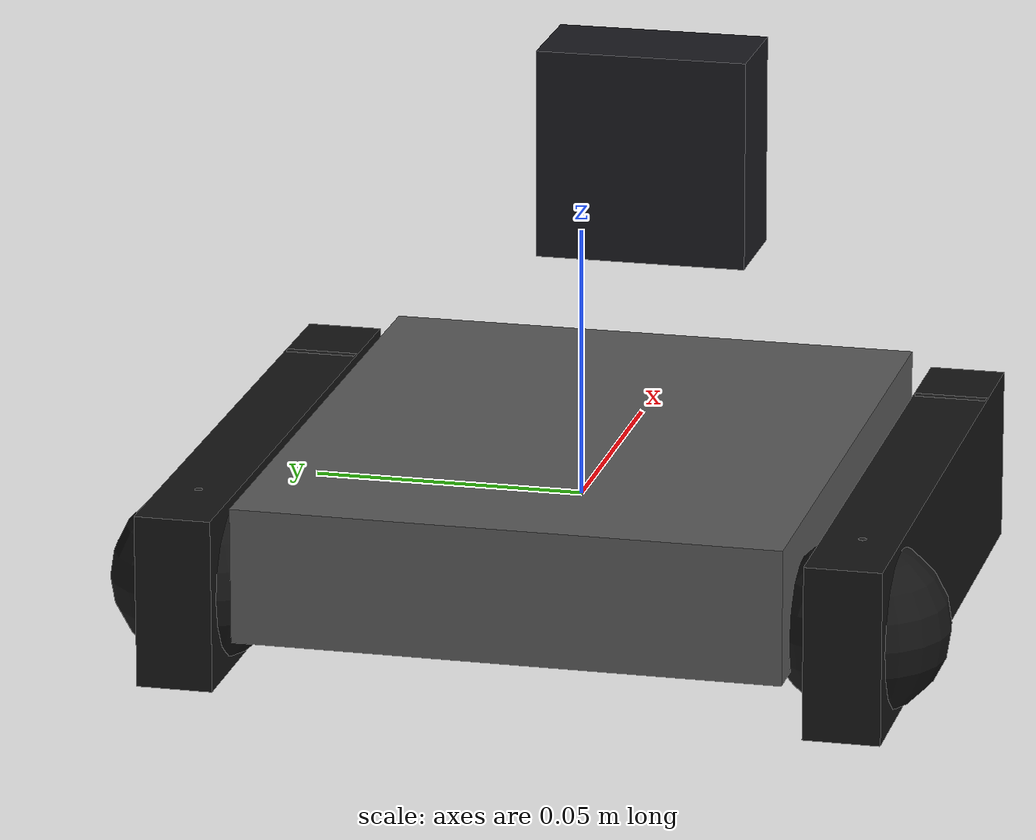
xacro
<?xml version="1.0"?>
<robot xmlns:xacro="http://www.ros.org/wiki/xacro" name="payload_pwm">

  <!-- Chassis and drivetrain dimensions (metres). -->
  <xacro:property name="body_length" value="0.12033"/>
  <xacro:property name="body_width" value="0.10000"/>
  <xacro:property name="body_height" value="0.02500"/>
  <xacro:property name="body_mass" value="0.50"/>

  <xacro:property name="wheel_radius" value="0.01611839"/>
  <xacro:property name="wheel_width" value="0.01338964"/>
  <xacro:property name="wheel_mass" value="0.05"/>
  <xacro:property name="wheel_separation" value="0.12132"/>
  <xacro:property name="wheel_base" value="0.08500"/>
  <xacro:property name="wheel_z" value="-0.00625"/>

  <!-- Decorative tread geometry. Wheel collisions provide the physics. -->
  <xacro:property name="tread_length" value="0.12000"/>
  <xacro:property name="tread_width" value="0.01400"/>
  <xacro:property name="tread_height" value="0.03200"/>

  <!-- Camera dimensions and mounting pose (metres / radians). -->
  <xacro:property name="camera_length" value="0.020"/>
  <xacro:property name="camera_width" value="0.040"/>
  <xacro:property name="camera_height" value="0.040"/>
  <xacro:property name="camera_mass" value="0.050"/>
  <xacro:property name="camera_x" value="0.058"/>
  <xacro:property name="camera_y" value="0.000"/>
  <xacro:property name="camera_z" value="0.050"/>

  <!-- Simulation parameters. -->
  <xacro:property name="wheel_mu" value="1.0"/>
  <xacro:property name="wheel_mu2" value="1.0"/>
  <xacro:property name="caster_mu" value="0.05"/>
  <xacro:property name="caster_mu2" value="0.05"/>
  <xacro:property name="joint_state_update_rate" value="20"/>
  <xacro:property name="camera_horizontal_fov" value="1.74"/>
  <xacro:property name="camera_width_px" value="1280"/>
  <xacro:property name="camera_height_px" value="960"/>
  <xacro:property name="camera_update_rate" value="30"/>

  <material name="payload_body_color">
    <color rgba="0.35 0.35 0.35 1.0"/>
  </material>

  <material name="payload_tread_color">
    <color rgba="0.08 0.08 0.08 1.0"/>
  </material>

  <material name="payload_camera_color">
    <color rgba="0.10 0.10 0.12 1.0"/>
  </material>

  <xacro:macro name="box_inertial" params="mass x y z">
    <inertial>
      <origin xyz="0 0 0" rpy="0 0 0"/>
      <mass value="${mass}"/>
      <inertia
        ixx="${mass * (y * y + z * z) / 12.0}"
        ixy="0.0"
        ixz="0.0"
        iyy="${mass * (x * x + z * z) / 12.0}"
        iyz="0.0"
        izz="${mass * (x * x + y * y) / 12.0}"/>
    </inertial>
  </xacro:macro>

  <!--
    Passive rear supports. URDF has no ball joint, so use spherical contacts
    with low friction to behave like small caster balls in Gazebo.
  -->
  <xacro:macro name="caster_ball" params="name x y">
    <link name="${name}">
      <visual>
        <origin xyz="0 0 0" rpy="0 0 0"/>
        <geometry>
          <sphere radius="${wheel_radius}"/>
        </geometry>
        <material name="payload_tread_color"/>
      </visual>

      <collision>
        <origin xyz="0 0 0" rpy="0 0 0"/>
        <geometry>
          <sphere radius="${wheel_radius}"/>
        </geometry>
      </collision>

      <inertial>
        <origin xyz="0 0 0" rpy="0 0 0"/>
        <mass value="${wheel_mass}"/>
        <inertia
          ixx="${2.0 * wheel_mass * wheel_radius * wheel_radius / 5.0}"
          ixy="0.0"
          ixz="0.0"
          iyy="${2.0 * wheel_mass * wheel_radius * wheel_radius / 5.0}"
          iyz="0.0"
          izz="${2.0 * wheel_mass * wheel_radius * wheel_radius / 5.0}"/>
      </inertial>
    </link>

    <joint name="${name}_joint" type="continuous">
      <origin xyz="${x} ${y} ${wheel_z}" rpy="0 0 0"/>
      <parent link="base_link"/>
      <child link="${name}"/>
      <axis xyz="0 1 0"/>
      <dynamics damping="0.0" friction="0.0"/>
    </joint>

    <gazebo reference="${name}">
      <mu1>${caster_mu}</mu1>
      <mu2>${caster_mu2}</mu2>
    </gazebo>
  </xacro:macro>

  <!--
    A wheel cylinder is drawn with its axis along y. The joint frame remains
    aligned with base_link, making its rotation axis unambiguously +y.
  -->
  <xacro:macro name="drive_wheel" params="name x y">
    <link name="${name}">
      <visual>
        <origin xyz="0 0 0" rpy="1.57079632679 0 0"/>
        <geometry>
          <cylinder radius="${wheel_radius}" length="${wheel_width}"/>
        </geometry>
        <material name="payload_tread_color"/>
      </visual>

      <collision>
        <origin xyz="0 0 0" rpy="1.57079632679 0 0"/>
        <geometry>
          <cylinder radius="${wheel_radius}" length="${wheel_width}"/>
        </geometry>
      </collision>

      <inertial>
        <origin xyz="0 0 0" rpy="0 0 0"/>
        <mass value="${wheel_mass}"/>
        <!-- Solid-cylinder inertia with the cylinder axis along y. -->
        <inertia
          ixx="${wheel_mass * (3.0 * wheel_radius * wheel_radius + wheel_width * wheel_width) / 12.0}"
          ixy="0.0"
          ixz="0.0"
          iyy="${wheel_mass * wheel_radius * wheel_radius / 2.0}"
          iyz="0.0"
          izz="${wheel_mass * (3.0 * wheel_radius * wheel_radius + wheel_width * wheel_width) / 12.0}"/>
      </inertial>
    </link>

    <joint name="${name}_joint" type="continuous">
      <origin xyz="${x} ${y} ${wheel_z}" rpy="0 0 0"/>
      <parent link="base_link"/>
      <child link="${name}"/>
      <axis xyz="0 1 0"/>
      <dynamics damping="0.01" friction="0.0"/>
    </joint>

    <gazebo reference="${name}">
      <mu1>${wheel_mu}</mu1>
      <mu2>${wheel_mu2}</mu2>
    </gazebo>
  </xacro:macro>

  <link name="base_link">
    <visual name="body_visual">
      <origin xyz="0 0 0" rpy="0 0 0"/>
      <geometry>
        <box size="${body_length} ${body_width} ${body_height}"/>
      </geometry>
      <material name="payload_body_color"/>
    </visual>

    <!-- Treads are visual approximations; the wheels handle contact. -->
    <visual name="left_tread_visual">
      <origin xyz="0 ${wheel_separation / 2.0} ${wheel_z}" rpy="0 0 0"/>
      <geometry>
        <box size="${tread_length} ${tread_width} ${tread_height}"/>
      </geometry>
      <material name="payload_tread_color"/>
    </visual>

    <visual name="right_tread_visual">
      <origin xyz="0 ${-wheel_separation / 2.0} ${wheel_z}" rpy="0 0 0"/>
      <geometry>
        <box size="${tread_length} ${tread_width} ${tread_height}"/>
      </geometry>
      <material name="payload_tread_color"/>
    </visual>

    <collision name="body_collision">
      <origin xyz="0 0 0" rpy="0 0 0"/>
      <geometry>
        <box size="${body_length} ${body_width} ${body_height}"/>
      </geometry>
    </collision>

    <xacro:box_inertial
      mass="${body_mass}"
      x="${body_length}"
      y="${body_width}"
      z="${body_height}"/>
  </link>

  <xacro:drive_wheel
    name="front_left_wheel"
    x="${wheel_base / 2.0}"
    y="${wheel_separation / 2.0}"/>
  <xacro:caster_ball
    name="rear_left_wheel"
    x="${-wheel_base / 2.0}"
    y="${wheel_separation / 2.0}"/>
  <xacro:drive_wheel
    name="front_right_wheel"
    x="${wheel_base / 2.0}"
    y="${-wheel_separation / 2.0}"/>
  <xacro:caster_ball
    name="rear_right_wheel"
    x="${-wheel_base / 2.0}"
    y="${-wheel_separation / 2.0}"/>

  <link name="camera_link">
    <visual>
      <origin xyz="0 0 0" rpy="0 0 0"/>
      <geometry>
        <box size="${camera_length} ${camera_width} ${camera_height}"/>
      </geometry>
      <material name="payload_camera_color"/>
    </visual>

    <collision>
      <origin xyz="0 0 0" rpy="0 0 0"/>
      <geometry>
        <box size="${camera_length} ${camera_width} ${camera_height}"/>
      </geometry>
    </collision>

    <xacro:box_inertial
      mass="${camera_mass}"
      x="${camera_length}"
      y="${camera_width}"
      z="${camera_height}"/>
  </link>

  <joint name="camera_joint" type="fixed">
    <origin xyz="${camera_x} ${camera_y} ${camera_z}" rpy="0 0 0"/>
    <parent link="base_link"/>
    <child link="camera_link"/>
  </joint>

  <!-- Standard ROS optical-frame convention: z forward, x right, y down. -->
  <link name="camera_optical_frame"/>
  <joint name="camera_optical_joint" type="fixed">
    <origin xyz="0 0 0" rpy="-1.57079632679 0 -1.57079632679"/>
    <parent link="camera_link"/>
    <child link="camera_optical_frame"/>
  </joint>

  <!-- Keep camera_link as an SDF link so its scoped Gazebo topic is stable. -->
  <gazebo reference="camera_joint">
    <preserveFixedJoint>true</preserveFixedJoint>
  </gazebo>

  <gazebo reference="camera_link">
    <sensor name="camera" type="camera">
      <pose>0 0 0 0 0 0</pose>
      <gz_frame_id>camera_optical_frame</gz_frame_id>
      <always_on>true</always_on>
      <update_rate>${camera_update_rate}</update_rate>
      <visualize>true</visualize>
      <camera>
        <horizontal_fov>${camera_horizontal_fov}</horizontal_fov>
        <image>
          <width>${camera_width_px}</width>
          <height>${camera_height_px}</height>
          <format>R8G8B8</format>
        </image>
        <clip>
          <near>0.1</near>
          <far>3000.0</far>
        </clip>
      </camera>
    </sensor>
  </gazebo>

  <gazebo reference="base_link">
    <sensor name="imu_sensor" type="imu">
      <pose>0 0 0 0 0 0</pose>
      <gz_frame_id>base_link</gz_frame_id>
      <always_on>true</always_on>
      <update_rate>200</update_rate>
      <visualize>false</visualize>
      <imu>
        <angular_velocity>
          <x><noise type="gaussian"><mean>0.0</mean><stddev>0.0002</stddev></noise></x>
          <y><noise type="gaussian"><mean>0.0</mean><stddev>0.0002</stddev></noise></y>
          <z><noise type="gaussian"><mean>0.0</mean><stddev>0.0002</stddev></noise></z>
        </angular_velocity>
        <linear_acceleration>
          <x><noise type="gaussian"><mean>0.0</mean><stddev>0.01</stddev></noise></x>
          <y><noise type="gaussian"><mean>0.0</mean><stddev>0.01</stddev></noise></y>
          <z><noise type="gaussian"><mean>0.0</mean><stddev>0.01</stddev></noise></z>
        </linear_acceleration>
      </imu>
    </sensor>
  </gazebo>

  <gazebo>
    <self_collide>false</self_collide>

    <plugin filename="gz-sim-joint-controller-system" name="gz::sim::systems::JointController">
      <joint_name>front_left_wheel_joint</joint_name>
      <sub_topic>command/motor_speed_left</sub_topic>
      <use_actuator_msg>true</use_actuator_msg>
      <actuator_number>0</actuator_number>
    </plugin>

    <plugin filename="gz-sim-joint-controller-system" name="gz::sim::systems::JointController">
      <joint_name>front_right_wheel_joint</joint_name>
      <sub_topic>command/motor_speed_right</sub_topic>
      <use_actuator_msg>true</use_actuator_msg>
      <actuator_number>0</actuator_number>
    </plugin>

    <!-- Enables a later Gazebo joint-state bridge for animated RViz wheels. -->
    <plugin
      filename="gz-sim-joint-state-publisher-system"
      name="gz::sim::systems::JointStatePublisher">
      <update_rate>${joint_state_update_rate}</update_rate>
      <joint_name>front_left_wheel_joint</joint_name>
      <joint_name>front_right_wheel_joint</joint_name>
    </plugin>

    <!-- Enables a later Gazebo pose-to-TF bridge for live RViz motion. -->
    <plugin
      filename="gz-sim-pose-publisher-system"
      name="gz::sim::systems::PosePublisher">
      <publish_link_pose>true</publish_link_pose>
      <use_pose_vector_msg>true</use_pose_vector_msg>
      <static_publisher>true</static_publisher>
      <static_update_frequency>1</static_update_frequency>
    </plugin>
  </gazebo>
</robot>
